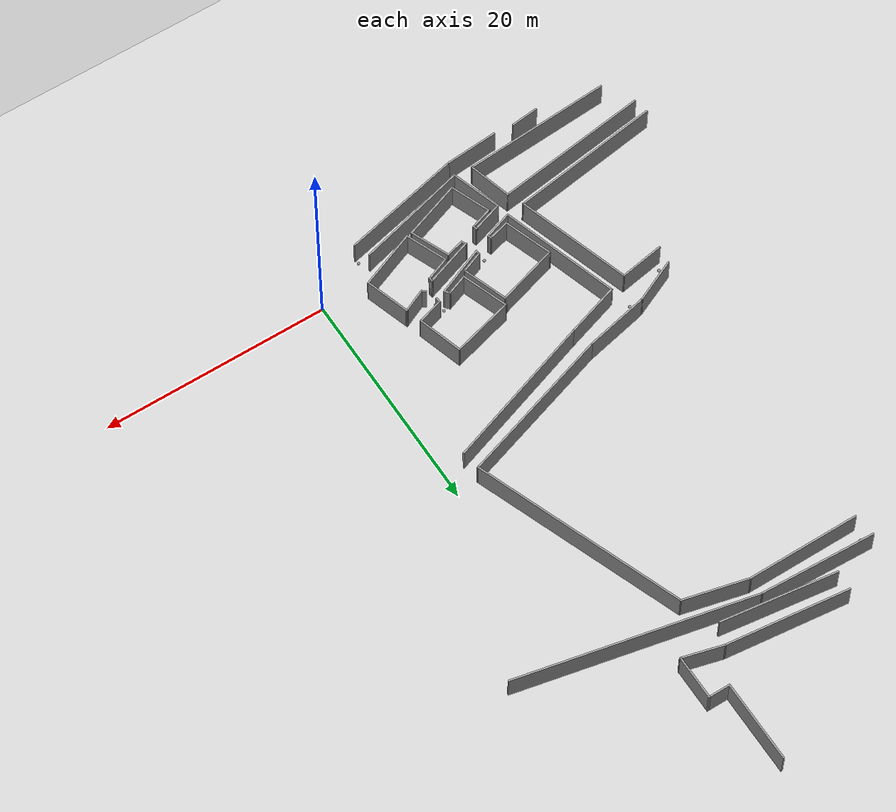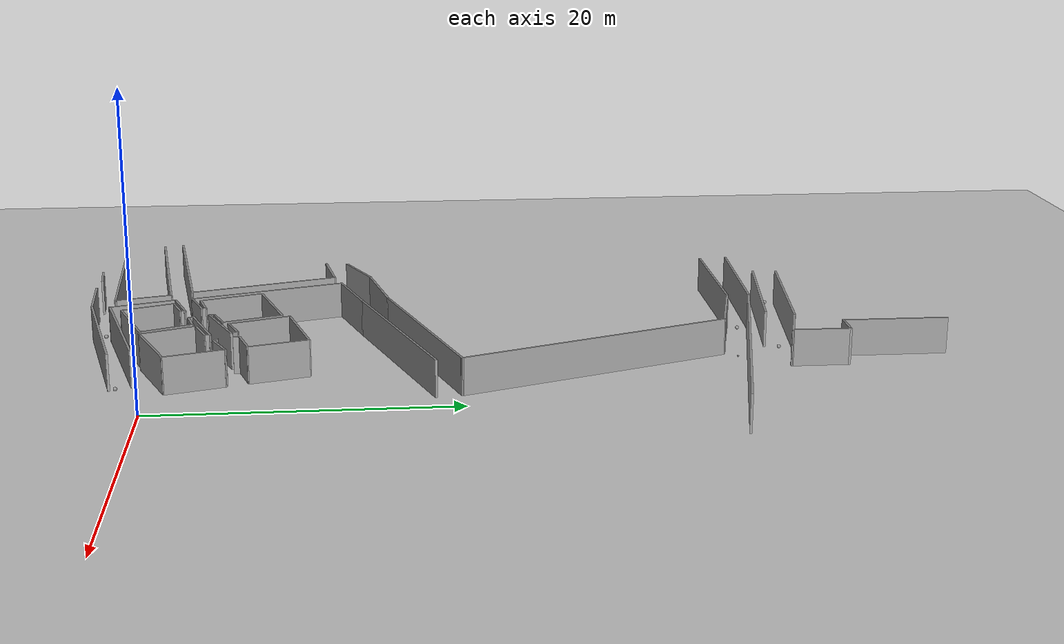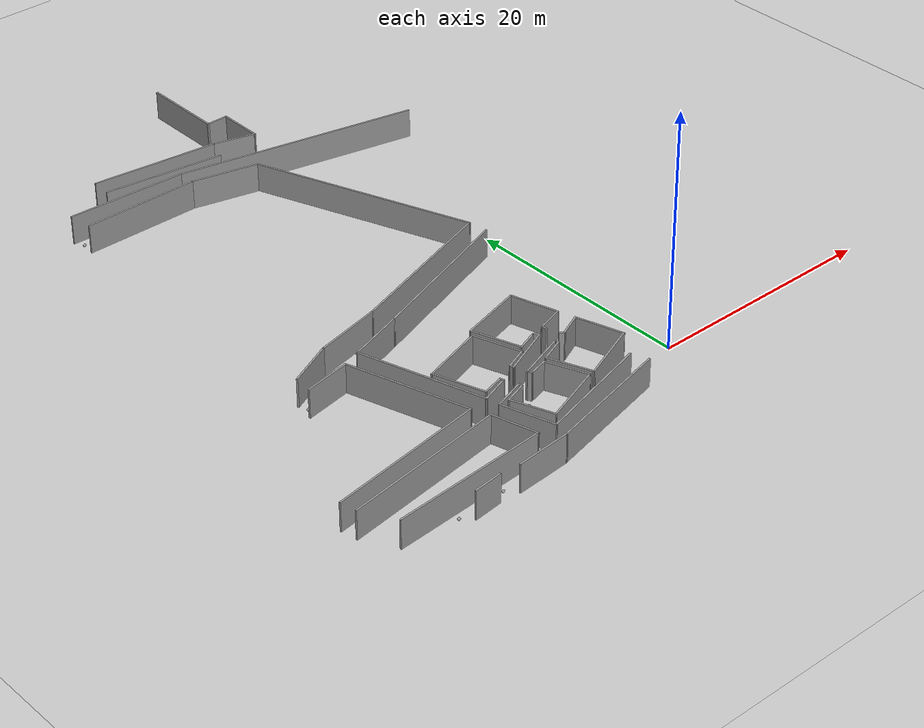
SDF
<sdf version="1.7">
 <world name="default">
  <model name="ground_plane">
   <static>1</static>
   <link name="link">
    <collision name="collision">
     <geometry><plane><normal>0 0 1</normal><size>100 100</size></plane></geometry>
     <surface><friction><ode><mu>100</mu><mu2>50</mu2></ode></friction></surface>
    </collision>
    <visual name="visual">
     <cast_shadows>0</cast_shadows>
     <geometry><plane><normal>0 0 1</normal><size>100 100</size></plane></geometry>
     <material>
      <script><uri>file://media/materials/scripts/gazebo.material</uri><name>Gazebo/Grey</name></script>
     </material>
    </visual>
   </link>
  </model>
  <model name="final_max_v1">
   <pose>-2.5231 0.6891 0 0 -0 0</pose>
   <link name="Wall_107">
    <collision name="Wall_107_Collision">
     <geometry><box><size>10.9191 0.15 2.5</size></box></geometry>
     <pose>0 0 1.25 0 -0 0</pose>
    </collision>
    <visual name="Wall_107_Visual">
     <pose>0 0 1.25 0 -0 0</pose>
     <geometry><box><size>10.9191 0.15 2.5</size></box></geometry>
     <material>
      <script><uri>file://media/materials/scripts/gazebo.material</uri><name>Gazebo/Grey</name></script>
      <ambient>1 1 1 1</ambient>
     </material>
     <meta><layer>0</layer></meta>
    </visual>
    <pose>-12.2939 42.7164 0 0 -0 -0.117872</pose>
   </link>
   <link name="Wall_111">
    <collision name="Wall_111_Collision">
     <geometry><box><size>3.75 0.15 2.5</size></box></geometry>
     <pose>0 0 1.25 0 -0 0</pose>
    </collision>
    <visual name="Wall_111_Visual">
     <pose>0 0 1.25 0 -0 0</pose>
     <geometry><box><size>3.75 0.15 2.5</size></box></geometry>
     <material>
      <script><uri>file://media/materials/scripts/gazebo.material</uri><name>Gazebo/Grey</name></script>
      <ambient>1 1 1 1</ambient>
     </material>
     <meta><layer>0</layer></meta>
    </visual>
    <pose>-5.20804 41.6173 0 0 -0 -0.261799</pose>
   </link>
   <link name="Wall_112">
    <collision name="Wall_112_Collision">
     <geometry><box><size>4 0.15 2.5</size></box></geometry>
     <pose>0 0 1.25 0 -0 0</pose>
    </collision>
    <visual name="Wall_112_Visual">
     <pose>0 0 1.25 0 -0 0</pose>
     <geometry><box><size>4 0.15 2.5</size></box></geometry>
     <material>
      <script><uri>file://media/materials/scripts/gazebo.material</uri><name>Gazebo/Grey</name></script>
      <ambient>1 1 1 1</ambient>
     </material>
     <meta><layer>0</layer></meta>
    </visual>
    <pose>-3.46937 43.0764 0 0 -0 1.5708</pose>
   </link>
   <link name="Wall_113">
    <collision name="Wall_113_Collision">
     <geometry><box><size>2 0.15 2.5</size></box></geometry>
     <pose>0 0 1.25 0 -0 0</pose>
    </collision>
    <visual name="Wall_113_Visual">
     <pose>0 0 1.25 0 -0 0</pose>
     <geometry><box><size>2 0.15 2.5</size></box></geometry>
     <material>
      <script><uri>file://media/materials/scripts/gazebo.material</uri><name>Gazebo/Grey</name></script>
      <ambient>1 1 1 1</ambient>
     </material>
     <meta><layer>0</layer></meta>
    </visual>
    <pose>-4.39437 45.0014 0 0 -0 3.14159</pose>
   </link>
   <link name="Wall_114">
    <collision name="Wall_114_Collision">
     <geometry><box><size>7.25 0.15 2.5</size></box></geometry>
     <pose>0 0 1.25 0 -0 0</pose>
    </collision>
    <visual name="Wall_114_Visual">
     <pose>0 0 1.25 0 -0 0</pose>
     <geometry><box><size>7.25 0.15 2.5</size></box></geometry>
     <material>
      <script><uri>file://media/materials/scripts/gazebo.material</uri><name>Gazebo/Grey</name></script>
      <ambient>1 1 1 1</ambient>
     </material>
     <meta><layer>0</layer></meta>
    </visual>
    <pose>-5.31937 48.5514 0 0 -0 1.5708</pose>
   </link>
   <link name="Wall_157">
    <collision name="Wall_157_Collision">
     <geometry><box><size>10.2725 0.15 2.5</size></box></geometry>
     <pose>0 0 1.25 0 -0 0</pose>
    </collision>
    <visual name="Wall_157_Visual">
     <pose>0 0 1.25 0 -0 0</pose>
     <geometry><box><size>10.2725 0.15 2.5</size></box></geometry>
     <material>
      <script><uri>file://media/materials/scripts/gazebo.material</uri><name>Gazebo/Grey</name></script>
      <ambient>1 1 1 1</ambient>
     </material>
     <meta><layer>0</layer></meta>
    </visual>
    <pose>-12.7202 40.965 0 0 -0 -0.136756</pose>
   </link>
   <link name="Wall_189">
    <collision name="Wall_189_Collision">
     <geometry><box><size>10.2804 0.15 2.5</size></box></geometry>
     <pose>0 0 1.25 0 -0 0</pose>
    </collision>
    <visual name="Wall_189_Visual">
     <pose>0 0 1.25 0 -0 0</pose>
     <geometry><box><size>10.2804 0.15 2.5</size></box></geometry>
     <material>
      <script><uri>file://media/materials/scripts/gazebo.material</uri><name>Gazebo/Grey</name></script>
      <ambient>1 1 1 1</ambient>
     </material>
     <meta><layer>0</layer></meta>
    </visual>
    <pose>-16.8186 40.2457 0 0 -0 -0.045423</pose>
   </link>
   <link name="Wall_191">
    <collision name="Wall_191_Collision">
     <geometry><box><size>20.8467 0.15 2.5</size></box></geometry>
     <pose>0 0 1.25 0 -0 0</pose>
    </collision>
    <visual name="Wall_191_Visual">
     <pose>0 0 1.25 0 -0 0</pose>
     <geometry><box><size>20.8467 0.15 2.5</size></box></geometry>
     <material>
      <script><uri>file://media/materials/scripts/gazebo.material</uri><name>Gazebo/Grey</name></script>
      <ambient>1 1 1 1</ambient>
     </material>
     <meta><layer>0</layer></meta>
    </visual>
    <pose>-1.63858 37.8537 0 0 -0 -0.210472</pose>
   </link>
   <link name="Wall_208">
    <collision name="Wall_208_Collision">
     <geometry><box><size>10 0.15 2.5</size></box></geometry>
     <pose>0 0 1.25 0 -0 0</pose>
    </collision>
    <visual name="Wall_208_Visual">
     <pose>0 0 1.25 0 -0 0</pose>
     <geometry><box><size>10 0.15 2.5</size></box></geometry>
     <material>
      <script><uri>file://media/materials/scripts/gazebo.material</uri><name>Gazebo/Grey</name></script>
      <ambient>1 1 1 1</ambient>
     </material>
     <meta><layer>0</layer></meta>
    </visual>
    <pose>-16.6881 38.4858 0 0 -0 0</pose>
   </link>
   <link name="Wall_326">
    <collision name="Wall_326_Collision">
     <geometry><box><size>2 0.15 2.5</size></box></geometry>
     <pose>0 0 1.25 0 -0 0</pose>
    </collision>
    <visual name="Wall_326_Visual">
     <pose>0 0 1.25 0 -0 0</pose>
     <geometry><box><size>2 0.15 2.5</size></box></geometry>
     <material>
      <script><uri>file://media/materials/scripts/gazebo.material</uri><name>Gazebo/Grey</name></script>
      <ambient>1 1 1 1</ambient>
     </material>
     <meta><layer>0</layer></meta>
    </visual>
    <pose>-12.5221 1.99009 0 0 -0 -2.87979</pose>
   </link>
   <link name="Wall_327">
    <collision name="Wall_327_Collision">
     <geometry><box><size>4.52817 0.15 2.5</size></box></geometry>
     <pose>0 0 1.25 0 -0 0</pose>
    </collision>
    <visual name="Wall_327_Visual">
     <pose>0 0 1.25 0 -0 0</pose>
     <geometry><box><size>4.52817 0.15 2.5</size></box></geometry>
     <material>
      <script><uri>file://media/materials/scripts/gazebo.material</uri><name>Gazebo/Grey</name></script>
      <ambient>1 1 1 1</ambient>
     </material>
     <meta><layer>0</layer></meta>
    </visual>
    <pose>-14.1161 3.82466 0 0 -0 1.89652</pose>
   </link>
   <link name="Wall_328">
    <collision name="Wall_328_Collision">
     <geometry><box><size>5.68673 0.15 2.5</size></box></geometry>
     <pose>0 0 1.25 0 -0 0</pose>
    </collision>
    <visual name="Wall_328_Visual">
     <pose>0 0 1.25 0 -0 0</pose>
     <geometry><box><size>5.68673 0.15 2.5</size></box></geometry>
     <material>
      <script><uri>file://media/materials/scripts/gazebo.material</uri><name>Gazebo/Grey</name></script>
      <ambient>1 1 1 1</ambient>
     </material>
     <meta><layer>0</layer></meta>
    </visual>
    <pose>-12.1699 6.71066 0 0 -0 0.2977</pose>
   </link>
   <link name="Wall_329">
    <collision name="Wall_329_Collision">
     <geometry><box><size>4.22069 0.15 2.5</size></box></geometry>
     <pose>0 0 1.25 0 -0 0</pose>
    </collision>
    <visual name="Wall_329_Visual">
     <pose>0 0 1.25 0 -0 0</pose>
     <geometry><box><size>4.22069 0.15 2.5</size></box></geometry>
     <material>
      <script><uri>file://media/materials/scripts/gazebo.material</uri><name>Gazebo/Grey</name></script>
      <ambient>1 1 1 1</ambient>
     </material>
     <meta><layer>0</layer></meta>
    </visual>
    <pose>-8.8617 5.59789 0 0 -0 -1.2397</pose>
   </link>
   <link name="Wall_330">
    <collision name="Wall_330_Collision">
     <geometry><box><size>2.0935 0.15 2.5</size></box></geometry>
     <pose>0 0 1.25 0 -0 0</pose>
    </collision>
    <visual name="Wall_330_Visual">
     <pose>0 0 1.25 0 -0 0</pose>
     <geometry><box><size>2.0935 0.15 2.5</size></box></geometry>
     <material>
      <script><uri>file://media/materials/scripts/gazebo.material</uri><name>Gazebo/Grey</name></script>
      <ambient>1 1 1 1</ambient>
     </material>
     <meta><layer>0</layer></meta>
    </visual>
    <pose>-9.1023 3.3122 0 0 -0 -2.76109</pose>
   </link>
   <link name="Wall_332">
    <collision name="Wall_332_Collision">
     <geometry><box><size>2.01562 0.15 2.5</size></box></geometry>
     <pose>0 0 1.25 0 -0 0</pose>
    </collision>
    <visual name="Wall_332_Visual">
     <pose>0 0 1.25 0 -0 0</pose>
     <geometry><box><size>2.01562 0.15 2.5</size></box></geometry>
     <material>
      <script><uri>file://media/materials/scripts/gazebo.material</uri><name>Gazebo/Grey</name></script>
      <ambient>1 1 1 1</ambient>
     </material>
     <meta><layer>0</layer></meta>
    </visual>
    <pose>-6.96698 4.42497 0 0 -0 -2.77905</pose>
   </link>
   <link name="Wall_333">
    <collision name="Wall_333_Collision">
     <geometry><box><size>4.35405 0.15 2.5</size></box></geometry>
     <pose>0 0 1.25 0 -0 0</pose>
    </collision>
    <visual name="Wall_333_Visual">
     <pose>0 0 1.25 0 -0 0</pose>
     <geometry><box><size>4.35405 0.15 2.5</size></box></geometry>
     <material>
      <script><uri>file://media/materials/scripts/gazebo.material</uri><name>Gazebo/Grey</name></script>
      <ambient>1 1 1 1</ambient>
     </material>
     <meta><layer>0</layer></meta>
    </visual>
    <pose>-8.53088 6.07909 0 0 -0 1.90612</pose>
   </link>
   <link name="Wall_334">
    <collision name="Wall_334_Collision">
     <geometry><box><size>5.63652 0.15 2.5</size></box></geometry>
     <pose>0 0 1.25 0 -0 0</pose>
    </collision>
    <visual name="Wall_334_Visual">
     <pose>0 0 1.25 0 -0 0</pose>
     <geometry><box><size>5.63652 0.15 2.5</size></box></geometry>
     <material>
      <script><uri>file://media/materials/scripts/gazebo.material</uri><name>Gazebo/Grey</name></script>
      <ambient>1 1 1 1</ambient>
     </material>
     <meta><layer>0</layer></meta>
    </visual>
    <pose>-6.57601 8.78584 0 0 -0 0.266252</pose>
   </link>
   <link name="Wall_335">
    <collision name="Wall_335_Collision">
     <geometry><box><size>4.16566 0.15 2.5</size></box></geometry>
     <pose>0 0 1.25 0 -0 0</pose>
    </collision>
    <visual name="Wall_335_Visual">
     <pose>0 0 1.25 0 -0 0</pose>
     <geometry><box><size>4.16566 0.15 2.5</size></box></geometry>
     <material>
      <script><uri>file://media/materials/scripts/gazebo.material</uri><name>Gazebo/Grey</name></script>
      <ambient>1 1 1 1</ambient>
     </material>
     <meta><layer>0</layer></meta>
    </visual>
    <pose>-3.35798 7.58284 0 0 -0 -1.28221</pose>
   </link>
   <link name="Wall_336">
    <collision name="Wall_336_Collision">
     <geometry><box><size>2.41423 0.15 2.5</size></box></geometry>
     <pose>0 0 1.25 0 -0 0</pose>
    </collision>
    <visual name="Wall_336_Visual">
     <pose>0 0 1.25 0 -0 0</pose>
     <geometry><box><size>2.41423 0.15 2.5</size></box></geometry>
     <material>
      <script><uri>file://media/materials/scripts/gazebo.material</uri><name>Gazebo/Grey</name></script>
      <ambient>1 1 1 1</ambient>
     </material>
     <meta><layer>0</layer></meta>
    </visual>
    <pose>-3.86926 5.32722 0 0 -0 -2.84505</pose>
   </link>
   <link name="Wall_338">
    <collision name="Wall_338_Collision">
     <geometry><box><size>3.79257 0.15 2.5</size></box></geometry>
     <pose>0 0 1.25 0 -0 0</pose>
    </collision>
    <visual name="Wall_338_Visual">
     <pose>0 0 1.25 0 -0 0</pose>
     <geometry><box><size>3.79257 0.15 2.5</size></box></geometry>
     <material>
      <script><uri>file://media/materials/scripts/gazebo.material</uri><name>Gazebo/Grey</name></script>
      <ambient>1 1 1 1</ambient>
     </material>
     <meta><layer>0</layer></meta>
    </visual>
    <pose>-12.1998 -1.73062 0 0 -0 -1.20362</pose>
   </link>
   <link name="Wall_339">
    <collision name="Wall_339_Collision">
     <geometry><box><size>5.49451 0.15 2.5</size></box></geometry>
     <pose>0 0 1.25 0 -0 0</pose>
    </collision>
    <visual name="Wall_339_Visual">
     <pose>0 0 1.25 0 -0 0</pose>
     <geometry><box><size>5.49451 0.15 2.5</size></box></geometry>
     <material>
      <script><uri>file://media/materials/scripts/gazebo.material</uri><name>Gazebo/Grey</name></script>
      <ambient>1 1 1 1</ambient>
     </material>
     <meta><layer>0</layer></meta>
    </visual>
    <pose>-9.03535 -2.51518 0 0 -0 0.349607</pose>
   </link>
   <link name="Wall_340">
    <collision name="Wall_340_Collision">
     <geometry><box><size>3.71476 0.15 2.5</size></box></geometry>
     <pose>0 0 1.25 0 -0 0</pose>
    </collision>
    <visual name="Wall_340_Visual">
     <pose>0 0 1.25 0 -0 0</pose>
     <geometry><box><size>3.71476 0.15 2.5</size></box></geometry>
     <material>
      <script><uri>file://media/materials/scripts/gazebo.material</uri><name>Gazebo/Grey</name></script>
      <ambient>1 1 1 1</ambient>
     </material>
     <meta><layer>0</layer></meta>
    </visual>
    <pose>-7.2047 0.047724 0 0 -0 1.9622</pose>
   </link>
   <link name="Wall_343">
    <collision name="Wall_343_Collision">
     <geometry><box><size>3.92824 0.15 2.5</size></box></geometry>
     <pose>0 0 1.25 0 -0 0</pose>
    </collision>
    <visual name="Wall_343_Visual">
     <pose>0 0 1.25 0 -0 0</pose>
     <geometry><box><size>3.92824 0.15 2.5</size></box></geometry>
     <material>
      <script><uri>file://media/materials/scripts/gazebo.material</uri><name>Gazebo/Grey</name></script>
      <ambient>1 1 1 1</ambient>
     </material>
     <meta><layer>0</layer></meta>
    </visual>
    <pose>-6.76011 0.204637 0 0 -0 -1.18772</pose>
   </link>
   <link name="Wall_344">
    <collision name="Wall_344_Collision">
     <geometry><box><size>5.45315 0.15 2.5</size></box></geometry>
     <pose>0 0 1.25 0 -0 0</pose>
    </collision>
    <visual name="Wall_344_Visual">
     <pose>0 0 1.25 0 -0 0</pose>
     <geometry><box><size>5.45315 0.15 2.5</size></box></geometry>
     <material>
      <script><uri>file://media/materials/scripts/gazebo.material</uri><name>Gazebo/Grey</name></script>
      <ambient>1 1 1 1</ambient>
     </material>
     <meta><layer>0</layer></meta>
    </visual>
    <pose>-3.5957 -0.553775 0 0 -0 0.384169</pose>
   </link>
   <link name="Wall_345">
    <collision name="Wall_345_Collision">
     <geometry><box><size>4.15324 0.15 2.5</size></box></geometry>
     <pose>0 0 1.25 0 -0 0</pose>
    </collision>
    <visual name="Wall_345_Visual">
     <pose>0 0 1.25 0 -0 0</pose>
     <geometry><box><size>4.15324 0.15 2.5</size></box></geometry>
     <material>
      <script><uri>file://media/materials/scripts/gazebo.material</uri><name>Gazebo/Grey</name></script>
      <ambient>1 1 1 1</ambient>
     </material>
     <meta><layer>0</layer></meta>
    </visual>
    <pose>-1.7389 2.34911 0 0 -0 1.87602</pose>
   </link>
   <link name="Wall_348">
    <collision name="Wall_348_Collision">
     <geometry><box><size>2.08526 0.15 2.5</size></box></geometry>
     <pose>0 0 1.25 0 -0 0</pose>
    </collision>
    <visual name="Wall_348_Visual">
     <pose>0 0 1.25 0 -0 0</pose>
     <geometry><box><size>2.08526 0.15 2.5</size></box></geometry>
     <material>
      <script><uri>file://media/materials/scripts/gazebo.material</uri><name>Gazebo/Grey</name></script>
      <ambient>1 1 1 1</ambient>
     </material>
     <meta><layer>0</layer></meta>
    </visual>
    <pose>-11.9382 0.283094 0 0 -0 0.330297</pose>
   </link>
   <link name="Wall_350">
    <collision name="Wall_350_Collision">
     <geometry><box><size>1.75 0.15 2.5</size></box></geometry>
     <pose>0 0 1.25 0 -0 0</pose>
    </collision>
    <visual name="Wall_350_Visual">
     <pose>0 0 1.25 0 -0 0</pose>
     <geometry><box><size>1.75 0.15 2.5</size></box></geometry>
     <material>
      <script><uri>file://media/materials/scripts/gazebo.material</uri><name>Gazebo/Grey</name></script>
      <ambient>1 1 1 1</ambient>
     </material>
     <meta><layer>0</layer></meta>
    </visual>
    <pose>-8.6574 1.48825 0 0 -0 -2.87979</pose>
   </link>
   <link name="Wall_352">
    <collision name="Wall_352_Collision">
     <geometry><box><size>2.28681 0.15 2.5</size></box></geometry>
     <pose>0 0 1.25 0 -0 0</pose>
    </collision>
    <visual name="Wall_352_Visual">
     <pose>0 0 1.25 0 -0 0</pose>
     <geometry><box><size>2.28681 0.15 2.5</size></box></geometry>
     <material>
      <script><uri>file://media/materials/scripts/gazebo.material</uri><name>Gazebo/Grey</name></script>
      <ambient>1 1 1 1</ambient>
     </material>
     <meta><layer>0</layer></meta>
    </visual>
    <pose>-6.47244 2.34911 0 0 -0 0.375961</pose>
   </link>
   <link name="Wall_354">
    <collision name="Wall_354_Collision">
     <geometry><box><size>2.27975 0.15 2.5</size></box></geometry>
     <pose>0 0 1.25 0 -0 0</pose>
    </collision>
    <visual name="Wall_354_Visual">
     <pose>0 0 1.25 0 -0 0</pose>
     <geometry><box><size>2.27975 0.15 2.5</size></box></geometry>
     <material>
      <script><uri>file://media/materials/scripts/gazebo.material</uri><name>Gazebo/Grey</name></script>
      <ambient>1 1 1 1</ambient>
     </material>
     <meta><layer>0</layer></meta>
    </visual>
    <pose>-3.30803 3.81363 0 0 -0 -2.7109</pose>
   </link>
   <link name="Wall_356">
    <collision name="Wall_356_Collision">
     <geometry><box><size>0.444601 0.15 2.5</size></box></geometry>
     <pose>0 0 1.25 0 -0 0</pose>
    </collision>
    <visual name="Wall_356_Visual">
     <pose>0 0 1.25 0 -0 0</pose>
     <geometry><box><size>0.444601 0.15 2.5</size></box></geometry>
     <material>
      <script><uri>file://media/materials/scripts/gazebo.material</uri><name>Gazebo/Grey</name></script>
      <ambient>1 1 1 1</ambient>
     </material>
     <meta><layer>0</layer></meta>
    </visual>
    <pose>-11.0589 0.739759 0 0 -0 -1.32406</pose>
   </link>
   <link name="Wall_358">
    <collision name="Wall_358_Collision">
     <geometry><box><size>0.523214 0.15 2.5</size></box></geometry>
     <pose>0 0 1.25 0 -0 0</pose>
    </collision>
    <visual name="Wall_358_Visual">
     <pose>0 0 1.25 0 -0 0</pose>
     <geometry><box><size>0.523214 0.15 2.5</size></box></geometry>
     <material>
      <script><uri>file://media/materials/scripts/gazebo.material</uri><name>Gazebo/Grey</name></script>
      <ambient>1 1 1 1</ambient>
     </material>
     <meta><layer>0</layer></meta>
    </visual>
    <pose>-9.5231 1.443 0 0 -0 -1.04932</pose>
   </link>
   <link name="Wall_360">
    <collision name="Wall_360_Collision">
     <geometry><box><size>0.411181 0.15 2.5</size></box></geometry>
     <pose>0 0 1.25 0 -0 0</pose>
    </collision>
    <visual name="Wall_360_Visual">
     <pose>0 0 1.25 0 -0 0</pose>
     <geometry><box><size>0.411181 0.15 2.5</size></box></geometry>
     <material>
      <script><uri>file://media/materials/scripts/gazebo.material</uri><name>Gazebo/Grey</name></script>
      <ambient>1 1 1 1</ambient>
     </material>
     <meta><layer>0</layer></meta>
    </visual>
    <pose>-11.5853 2.1063 0 0 -0 1.90897</pose>
   </link>
   <link name="Wall_362">
    <collision name="Wall_362_Collision">
     <geometry><box><size>0.467902 0.15 2.5</size></box></geometry>
     <pose>0 0 1.25 0 -0 0</pose>
    </collision>
    <visual name="Wall_362_Visual">
     <pose>0 0 1.25 0 -0 0</pose>
     <geometry><box><size>0.467902 0.15 2.5</size></box></geometry>
     <material>
      <script><uri>file://media/materials/scripts/gazebo.material</uri><name>Gazebo/Grey</name></script>
      <ambient>1 1 1 1</ambient>
     </material>
     <meta><layer>0</layer></meta>
    </visual>
    <pose>-9.98226 2.79392 0 0 -0 1.71151</pose>
   </link>
   <link name="Wall_364">
    <collision name="Wall_364_Collision">
     <geometry><box><size>0.497007 0.15 2.5</size></box></geometry>
     <pose>0 0 1.25 0 -0 0</pose>
    </collision>
    <visual name="Wall_364_Visual">
     <pose>0 0 1.25 0 -0 0</pose>
     <geometry><box><size>0.497007 0.15 2.5</size></box></geometry>
     <material>
      <script><uri>file://media/materials/scripts/gazebo.material</uri><name>Gazebo/Grey</name></script>
      <ambient>1 1 1 1</ambient>
     </material>
     <meta><layer>0</layer></meta>
    </visual>
    <pose>-5.98113 4.62472 0 0 -0 2.28524</pose>
   </link>
   <link name="Wall_366">
    <collision name="Wall_366_Collision">
     <geometry><box><size>0.515419 0.15 2.5</size></box></geometry>
     <pose>0 0 1.25 0 -0 0</pose>
    </collision>
    <visual name="Wall_366_Visual">
     <pose>0 0 1.25 0 -0 0</pose>
     <geometry><box><size>0.515419 0.15 2.5</size></box></geometry>
     <material>
      <script><uri>file://media/materials/scripts/gazebo.material</uri><name>Gazebo/Grey</name></script>
      <ambient>1 1 1 1</ambient>
     </material>
     <meta><layer>0</layer></meta>
    </visual>
    <pose>-4.94543 4.8138 0 0 -0 1.60655</pose>
   </link>
   <link name="Wall_368">
    <collision name="Wall_368_Collision">
     <geometry><box><size>0.458009 0.15 2.5</size></box></geometry>
     <pose>0 0 1.25 0 -0 0</pose>
    </collision>
    <visual name="Wall_368_Visual">
     <pose>0 0 1.25 0 -0 0</pose>
     <geometry><box><size>0.458009 0.15 2.5</size></box></geometry>
     <material>
      <script><uri>file://media/materials/scripts/gazebo.material</uri><name>Gazebo/Grey</name></script>
      <ambient>1 1 1 1</ambient>
     </material>
     <meta><layer>0</layer></meta>
    </visual>
    <pose>-5.4839 2.89531 0 0 -0 -1.53674</pose>
   </link>
   <link name="Wall_370">
    <collision name="Wall_370_Collision">
     <geometry><box><size>0.49586 0.15 2.5</size></box></geometry>
     <pose>0 0 1.25 0 -0 0</pose>
    </collision>
    <visual name="Wall_370_Visual">
     <pose>0 0 1.25 0 -0 0</pose>
     <geometry><box><size>0.49586 0.15 2.5</size></box></geometry>
     <material>
      <script><uri>file://media/materials/scripts/gazebo.material</uri><name>Gazebo/Grey</name></script>
      <ambient>1 1 1 1</ambient>
     </material>
     <meta><layer>0</layer></meta>
    </visual>
    <pose>-4.41813 3.46707 0 0 -0 -0.602649</pose>
   </link>
   <link name="Wall_381">
    <collision name="Wall_381_Collision">
     <geometry><box><size>14.3834 0.15 2.5</size></box></geometry>
     <pose>0 0 1.25 0 -0 0</pose>
    </collision>
    <visual name="Wall_381_Visual">
     <pose>0 0 1.25 0 -0 0</pose>
     <geometry><box><size>14.3834 0.15 2.5</size></box></geometry>
     <material>
      <script><uri>file://media/materials/scripts/gazebo.material</uri><name>Gazebo/Grey</name></script>
      <ambient>1 1 1 1</ambient>
     </material>
     <meta><layer>0</layer></meta>
    </visual>
    <pose>-6.23233 16.9329 0 0 -0 0.313621</pose>
   </link>
   <link name="Wall_383">
    <collision name="Wall_383_Collision">
     <geometry><box><size>19.4012 0.15 2.5</size></box></geometry>
     <pose>0 0 1.25 0 -0 0</pose>
    </collision>
    <visual name="Wall_383_Visual">
     <pose>0 0 1.25 0 -0 0</pose>
     <geometry><box><size>19.4012 0.15 2.5</size></box></geometry>
     <material>
      <script><uri>file://media/materials/scripts/gazebo.material</uri><name>Gazebo/Grey</name></script>
      <ambient>1 1 1 1</ambient>
     </material>
     <meta><layer>0</layer></meta>
    </visual>
    <pose>-2.84755 28.1393 0 0 -0 -1.21147</pose>
   </link>
   <link name="Wall_385">
    <collision name="Wall_385_Collision">
     <geometry><box><size>5.83984 0.15 2.5</size></box></geometry>
     <pose>0 0 1.25 0 -0 0</pose>
    </collision>
    <visual name="Wall_385_Visual">
     <pose>0 0 1.25 0 -0 0</pose>
     <geometry><box><size>5.83984 0.15 2.5</size></box></geometry>
     <material>
      <script><uri>file://media/materials/scripts/gazebo.material</uri><name>Gazebo/Grey</name></script>
      <ambient>1 1 1 1</ambient>
     </material>
     <meta><layer>0</layer></meta>
    </visual>
    <pose>-8.99774 37.818 0 0 -0 -0.236973</pose>
   </link>
   <link name="Wall_400">
    <collision name="Wall_400_Collision">
     <geometry><box><size>4.23042 0.15 2.5</size></box></geometry>
     <pose>0 0 1.25 0 -0 0</pose>
    </collision>
    <visual name="Wall_400_Visual">
     <pose>0 0 1.25 0 -0 0</pose>
     <geometry><box><size>4.23042 0.15 2.5</size></box></geometry>
     <material>
      <script><uri>file://media/materials/scripts/gazebo.material</uri><name>Gazebo/Grey</name></script>
      <ambient>1 1 1 1</ambient>
     </material>
     <meta><layer>0</layer></meta>
    </visual>
    <pose>-20.4212 12.6703 0 0 -0 0.428018</pose>
   </link>
   <link name="Wall_401">
    <collision name="Wall_401_Collision">
     <geometry><box><size>5.84537 0.15 2.5</size></box></geometry>
     <pose>0 0 1.25 0 -0 0</pose>
    </collision>
    <visual name="Wall_401_Visual">
     <pose>0 0 1.25 0 -0 0</pose>
     <geometry><box><size>5.84537 0.15 2.5</size></box></geometry>
     <material>
      <script><uri>file://media/materials/scripts/gazebo.material</uri><name>Gazebo/Grey</name></script>
      <ambient>1 1 1 1</ambient>
     </material>
     <meta><layer>0</layer></meta>
    </visual>
    <pose>-15.7834 14.1273 0 0 -0 0.215921</pose>
   </link>
   <link name="Wall_404">
    <collision name="Wall_404_Collision">
     <geometry><box><size>4 0.15 2.5</size></box></geometry>
     <pose>0 0 1.25 0 -0 0</pose>
    </collision>
    <visual name="Wall_404_Visual">
     <pose>0 0 1.25 0 -0 0</pose>
     <geometry><box><size>4 0.15 2.5</size></box></geometry>
     <material>
      <script><uri>file://media/materials/scripts/gazebo.material</uri><name>Gazebo/Grey</name></script>
      <ambient>1 1 1 1</ambient>
     </material>
     <meta><layer>0</layer></meta>
    </visual>
    <pose>-14.4631 -2.31451 0 0 -0 1.8326</pose>
   </link>
   <link name="Wall_407">
    <collision name="Wall_407_Collision">
     <geometry><box><size>13.2674 0.15 2.5</size></box></geometry>
     <pose>0 0 1.25 0 -0 0</pose>
    </collision>
    <visual name="Wall_407_Visual">
     <pose>0 0 1.25 0 -0 0</pose>
     <geometry><box><size>13.2674 0.15 2.5</size></box></geometry>
     <material>
      <script><uri>file://media/materials/scripts/gazebo.material</uri><name>Gazebo/Grey</name></script>
      <ambient>1 1 1 1</ambient>
     </material>
     <meta><layer>0</layer></meta>
    </visual>
    <pose>-20.5089 -4.61181 0 0 -0 0.066815</pose>
   </link>
   <link name="Wall_409">
    <collision name="Wall_409_Collision">
     <geometry><box><size>13.9247 0.15 2.5</size></box></geometry>
     <pose>0 0 1.25 0 -0 0</pose>
    </collision>
    <visual name="Wall_409_Visual">
     <pose>0 0 1.25 0 -0 0</pose>
     <geometry><box><size>13.9247 0.15 2.5</size></box></geometry>
     <material>
      <script><uri>file://media/materials/scripts/gazebo.material</uri><name>Gazebo/Grey</name></script>
      <ambient>1 1 1 1</ambient>
     </material>
     <meta><layer>0</layer></meta>
    </visual>
    <pose>-21.7821 -1.41006 0 0 -0 0.139103</pose>
   </link>
   <link name="Wall_433">
    <collision name="Wall_433_Collision">
     <geometry><box><size>13.5881 0.15 2.5</size></box></geometry>
     <pose>0 0 1.25 0 -0 0</pose>
    </collision>
    <visual name="Wall_433_Visual">
     <pose>0 0 1.25 0 -0 0</pose>
     <geometry><box><size>13.5881 0.15 2.5</size></box></geometry>
     <material>
      <script><uri>file://media/materials/scripts/gazebo.material</uri><name>Gazebo/Grey</name></script>
      <ambient>1 1 1 1</ambient>
     </material>
     <meta><layer>0</layer></meta>
    </visual>
    <pose>-22.2034 -0.021479 0 0 -0 0.146646</pose>
   </link>
   <link name="Wall_435">
    <collision name="Wall_435_Collision">
     <geometry><box><size>10.5808 0.15 2.5</size></box></geometry>
     <pose>0 0 1.25 0 -0 0</pose>
    </collision>
    <visual name="Wall_435_Visual">
     <pose>0 0 1.25 0 -0 0</pose>
     <geometry><box><size>10.5808 0.15 2.5</size></box></geometry>
     <material>
      <script><uri>file://media/materials/scripts/gazebo.material</uri><name>Gazebo/Grey</name></script>
      <ambient>1 1 1 1</ambient>
     </material>
     <meta><layer>0</layer></meta>
    </visual>
    <pose>-17.088 5.94576 0 0 -0 -1.27273</pose>
   </link>
   <link name="Wall_437">
    <collision name="Wall_437_Collision">
     <geometry><box><size>4.04743 0.15 2.5</size></box></geometry>
     <pose>0 0 1.25 0 -0 0</pose>
    </collision>
    <visual name="Wall_437_Visual">
     <pose>0 0 1.25 0 -0 0</pose>
     <geometry><box><size>4.04743 0.15 2.5</size></box></geometry>
     <material>
      <script><uri>file://media/materials/scripts/gazebo.material</uri><name>Gazebo/Grey</name></script>
      <ambient>1 1 1 1</ambient>
     </material>
     <meta><layer>0</layer></meta>
    </visual>
    <pose>-20.54 10.5998 0 0 -0 0.170915</pose>
   </link>
   <link name="Wall_439">
    <collision name="Wall_439_Collision">
     <geometry><box><size>10.9365 0.15 2.5</size></box></geometry>
     <pose>0 0 1.25 0 -0 0</pose>
    </collision>
    <visual name="Wall_439_Visual">
     <pose>0 0 1.25 0 -0 0</pose>
     <geometry><box><size>10.9365 0.15 2.5</size></box></geometry>
     <material>
      <script><uri>file://media/materials/scripts/gazebo.material</uri><name>Gazebo/Grey</name></script>
      <ambient>1 1 1 1</ambient>
     </material>
     <meta><layer>0</layer></meta>
    </visual>
    <pose>-15.4987 6.28843 0 0 -0 1.86683</pose>
   </link>
   <link name="Wall_440">
    <collision name="Wall_440_Collision">
     <geometry><box><size>5.05496 0.15 2.5</size></box></geometry>
     <pose>0 0 1.25 0 -0 0</pose>
    </collision>
    <visual name="Wall_440_Visual">
     <pose>0 0 1.25 0 -0 0</pose>
     <geometry><box><size>5.05496 0.15 2.5</size></box></geometry>
     <material>
      <script><uri>file://media/materials/scripts/gazebo.material</uri><name>Gazebo/Grey</name></script>
      <ambient>1 1 1 1</ambient>
     </material>
     <meta><layer>0</layer></meta>
    </visual>
    <pose>-14.7399 12.2058 0 0 -0 0.314541</pose>
   </link>
   <link name="Wall_442">
    <collision name="Wall_442_Collision">
     <geometry><box><size>2.6815 0.15 2.5</size></box></geometry>
     <pose>0 0 1.25 0 -0 0</pose>
    </collision>
    <visual name="Wall_442_Visual">
     <pose>0 0 1.25 0 -0 0</pose>
     <geometry><box><size>2.6815 0.15 2.5</size></box></geometry>
     <material>
      <script><uri>file://media/materials/scripts/gazebo.material</uri><name>Gazebo/Grey</name></script>
      <ambient>1 1 1 1</ambient>
     </material>
     <meta><layer>0</layer></meta>
    </visual>
    <pose>-12.7336 1.55645 0 0 -0 0.34381</pose>
   </link>
   <link name="Wall_444">
    <collision name="Wall_444_Collision">
     <geometry><box><size>4.68733 0.15 2.5</size></box></geometry>
     <pose>0 0 1.25 0 -0 0</pose>
    </collision>
    <visual name="Wall_444_Visual">
     <pose>0 0 1.25 0 -0 0</pose>
     <geometry><box><size>4.68733 0.15 2.5</size></box></geometry>
     <material>
      <script><uri>file://media/materials/scripts/gazebo.material</uri><name>Gazebo/Grey</name></script>
      <ambient>1 1 1 1</ambient>
     </material>
     <meta><layer>0</layer></meta>
    </visual>
    <pose>-13.0325 -2.16165 0 0 -0 -1.26791</pose>
   </link>
   <link name="Wall_446">
    <collision name="Wall_446_Collision">
     <geometry><box><size>2.90807 0.15 2.5</size></box></geometry>
     <pose>0 0 1.25 0 -0 0</pose>
    </collision>
    <visual name="Wall_446_Visual">
     <pose>0 0 1.25 0 -0 0</pose>
     <geometry><box><size>2.90807 0.15 2.5</size></box></geometry>
     <material>
      <script><uri>file://media/materials/scripts/gazebo.material</uri><name>Gazebo/Grey</name></script>
      <ambient>1 1 1 1</ambient>
     </material>
     <meta><layer>0</layer></meta>
    </visual>
    <pose>-12.402 0.443172 0 0 -0 0.324301</pose>
   </link>
   <link name="Wall_448">
    <collision name="Wall_448_Collision">
     <geometry><box><size>4.52238 0.15 2.5</size></box></geometry>
     <pose>0 0 1.25 0 -0 0</pose>
    </collision>
    <visual name="Wall_448_Visual">
     <pose>0 0 1.25 0 -0 0</pose>
     <geometry><box><size>4.52238 0.15 2.5</size></box></geometry>
     <material>
      <script><uri>file://media/materials/scripts/gazebo.material</uri><name>Gazebo/Grey</name></script>
      <ambient>1 1 1 1</ambient>
     </material>
     <meta><layer>0</layer></meta>
    </visual>
    <pose>-7.5526 2.32702 0 0 -0 0.336675</pose>
   </link>
   <link name="Wall_450">
    <collision name="Wall_450_Collision">
     <geometry><box><size>4.64704 0.15 2.5</size></box></geometry>
     <pose>0 0 1.25 0 -0 0</pose>
    </collision>
    <visual name="Wall_450_Visual">
     <pose>0 0 1.25 0 -0 0</pose>
     <geometry><box><size>4.64704 0.15 2.5</size></box></geometry>
     <material>
      <script><uri>file://media/materials/scripts/gazebo.material</uri><name>Gazebo/Grey</name></script>
      <ambient>1 1 1 1</ambient>
     </material>
     <meta><layer>0</layer></meta>
    </visual>
    <pose>-7.88723 3.50809 0 0 -0 0.398042</pose>
   </link>
   <link name="Wall_452">
    <collision name="Wall_452_Collision">
     <geometry><box><size>10.25 0.15 2.5</size></box></geometry>
     <pose>0 0 1.25 0 -0 0</pose>
    </collision>
    <visual name="Wall_452_Visual">
     <pose>0 0 1.25 0 -0 0</pose>
     <geometry><box><size>10.25 0.15 2.5</size></box></geometry>
     <material>
      <script><uri>file://media/materials/scripts/gazebo.material</uri><name>Gazebo/Grey</name></script>
      <ambient>1 1 1 1</ambient>
     </material>
     <meta><layer>0</layer></meta>
    </visual>
    <pose>-7.47787 -3.02001 0 0 -0 0.261799</pose>
   </link>
   <link name="Wall_599">
    <collision name="Wall_599_Collision">
     <geometry><box><size>2.52036 0.15 2.5</size></box></geometry>
     <pose>0 0 1.25 0 -0 0</pose>
    </collision>
    <visual name="Wall_599_Visual">
     <pose>0 0 1.25 0 -0 0</pose>
     <geometry><box><size>2.52036 0.15 2.5</size></box></geometry>
     <material>
      <script><uri>file://media/materials/scripts/gazebo.material</uri><name>Gazebo/Grey</name></script>
      <ambient>1 1 1 1</ambient>
     </material>
     <meta><layer>0</layer></meta>
    </visual>
    <pose>-20.1715 -5.93225 0 0 -0 -3.0278</pose>
   </link>
   <link name="Wall_604">
    <collision name="Wall_604_Collision">
     <geometry><box><size>4.75114 0.15 2.5</size></box></geometry>
     <pose>0 0 1.25 0 -0 0</pose>
    </collision>
    <visual name="Wall_604_Visual">
     <pose>0 0 1.25 0 -0 0</pose>
     <geometry><box><size>4.75114 0.15 2.5</size></box></geometry>
     <material>
      <script><uri>file://media/materials/scripts/gazebo.material</uri><name>Gazebo/Grey</name></script>
      <ambient>1 1 1 1</ambient>
     </material>
     <meta><layer>0</layer></meta>
    </visual>
    <pose>-14.8837 -5.75218 0 0 -0 0.078353</pose>
   </link>
   <link name="Wall_606">
    <collision name="Wall_606_Collision">
     <geometry><box><size>10.961 0.15 2.5</size></box></geometry>
     <pose>0 0 1.25 0 -0 0</pose>
    </collision>
    <visual name="Wall_606_Visual">
     <pose>0 0 1.25 0 -0 0</pose>
     <geometry><box><size>10.961 0.15 2.5</size></box></geometry>
     <material>
      <script><uri>file://media/materials/scripts/gazebo.material</uri><name>Gazebo/Grey</name></script>
      <ambient>1 1 1 1</ambient>
     </material>
     <meta><layer>0</layer></meta>
    </visual>
    <pose>-7.32839 -4.33404 0 0 -0 0.231091</pose>
   </link>
   <link name="Wall_610">
    <collision name="Wall_610_Collision">
     <geometry><box><size>14.0742 0.15 2.5</size></box></geometry>
     <pose>0 0 1.25 0 -0 0</pose>
    </collision>
    <visual name="Wall_610_Visual">
     <pose>0 0 1.25 0 -0 0</pose>
     <geometry><box><size>14.0742 0.15 2.5</size></box></geometry>
     <material>
      <script><uri>file://media/materials/scripts/gazebo.material</uri><name>Gazebo/Grey</name></script>
      <ambient>1 1 1 1</ambient>
     </material>
     <meta><layer>0</layer></meta>
    </visual>
    <pose>-5.81988 15.2164 0 0 -0 0.32937</pose>
   </link>
   <static>1</static>
  </model>
  <model name="id_1">
   <pose>-8.09262 38.6942 0.059356 0 -0 0</pose>
   <link name="link">
    <inertial>
     <mass>1</mass>
     <inertia><ixx>0.1</ixx><ixy>0</ixy><ixz>0</ixz><iyy>0.1</iyy><iyz>0</iyz><izz>0.1</izz></inertia>
    </inertial>
    <collision name="collision"><geometry><sphere><radius>0.0593561</radius></sphere></geometry></collision>
    <visual name="visual">
     <geometry><sphere><radius>0.0593561</radius></sphere></geometry>
     <material>
      <script><name>Gazebo/Grey</name><uri>file://media/materials/scripts/gazebo.material</uri></script>
     </material>
    </visual>
   </link>
  </model>
  <model name="id_9">
   <pose>-9.70758 41.8568 0.128457 0 -0 0</pose>
   <link name="link">
    <inertial>
     <mass>1</mass>
     <inertia><ixx>0.1</ixx><ixy>0</ixy><ixz>0</ixz><iyy>0.1</iyy><iyz>0</iyz><izz>0.1</izz></inertia>
    </inertial>
    <collision name="collision"><geometry><sphere><radius>0.128457</radius></sphere></geometry></collision>
    <visual name="visual">
     <geometry><sphere><radius>0.128457</radius></sphere></geometry>
     <material>
      <script><name>Gazebo/Grey</name><uri>file://media/materials/scripts/gazebo.material</uri></script>
     </material>
    </visual>
   </link>
  </model>
  <model name="id_10">
   <pose>-20.1703 43.3345 0.128457 0 -0 0</pose>
   <link name="link">
    <inertial>
     <mass>1</mass>
     <inertia><ixx>0.1</ixx><ixy>0</ixy><ixz>0</ixz><iyy>0.1</iyy><iyz>0</iyz><izz>0.1</izz></inertia>
    </inertial>
    <collision name="collision"><geometry><sphere><radius>0.128457</radius></sphere></geometry></collision>
    <visual name="visual">
     <geometry><sphere><radius>0.128457</radius></sphere></geometry>
     <material>
      <script><name>Gazebo/Grey</name><uri>file://media/materials/scripts/gazebo.material</uri></script>
     </material>
    </visual>
   </link>
  </model>
  <model name="id_13">
   <pose>-24.0958 40.2354 0.128457 0 -0 0</pose>
   <link name="link">
    <inertial>
     <mass>1</mass>
     <inertia><ixx>0.1</ixx><ixy>0</ixy><ixz>0</ixz><iyy>0.1</iyy><iyz>0</iyz><izz>0.1</izz></inertia>
    </inertial>
    <collision name="collision"><geometry><sphere><radius>0.128457</radius></sphere></geometry></collision>
    <visual name="visual">
     <geometry><sphere><radius>0.128457</radius></sphere></geometry>
     <material>
      <script><name>Gazebo/Grey</name><uri>file://media/materials/scripts/gazebo.material</uri></script>
     </material>
    </visual>
   </link>
  </model>
  <model name="id_14">
   <pose>-14.1627 39.9392 0.128457 0 -0 0</pose>
   <link name="link">
    <inertial>
     <mass>1</mass>
     <inertia><ixx>0.1</ixx><ixy>0</ixy><ixz>0</ixz><iyy>0.1</iyy><iyz>0</iyz><izz>0.1</izz></inertia>
    </inertial>
    <collision name="collision"><geometry><sphere><radius>0.128457</radius></sphere></geometry></collision>
    <visual name="visual">
     <geometry><sphere><radius>0.128457</radius></sphere></geometry>
     <material>
      <script><name>Gazebo/Grey</name><uri>file://media/materials/scripts/gazebo.material</uri></script>
     </material>
    </visual>
   </link>
  </model>
  <model name="id_46">
   <pose>-20.5905 -4.47189 0.128457 0 -0 0</pose>
   <link name="link">
    <inertial>
     <mass>1</mass>
     <inertia><ixx>0.1</ixx><ixy>0</ixy><ixz>0</ixz><iyy>0.1</iyy><iyz>0</iyz><izz>0.1</izz></inertia>
    </inertial>
    <collision name="collision"><geometry><sphere><radius>0.128457</radius></sphere></geometry></collision>
    <visual name="visual">
     <geometry><sphere><radius>0.128457</radius></sphere></geometry>
     <material>
      <script><name>Gazebo/Grey</name><uri>file://media/materials/scripts/gazebo.material</uri></script>
     </material>
    </visual>
   </link>
  </model>
  <model name="id_47">
   <pose>-15.6827 -4.13124 0.128457 0 -0 0</pose>
   <link name="link">
    <inertial>
     <mass>1</mass>
     <inertia><ixx>0.1</ixx><ixy>0</ixy><ixz>0</ixz><iyy>0.1</iyy><iyz>0</iyz><izz>0.1</izz></inertia>
    </inertial>
    <collision name="collision"><geometry><sphere><radius>0.128457</radius></sphere></geometry></collision>
    <visual name="visual">
     <geometry><sphere><radius>0.128457</radius></sphere></geometry>
     <material>
      <script><name>Gazebo/Grey</name><uri>file://media/materials/scripts/gazebo.material</uri></script>
     </material>
    </visual>
   </link>
  </model>
  <model name="id_48">
   <pose>-4.6422 -2.0089 0.128457 0 -0 0</pose>
   <link name="link">
    <inertial>
     <mass>1</mass>
     <inertia><ixx>0.1</ixx><ixy>0</ixy><ixz>0</ixz><iyy>0.1</iyy><iyz>0</iyz><izz>0.1</izz></inertia>
    </inertial>
    <collision name="collision"><geometry><sphere><radius>0.128457</radius></sphere></geometry></collision>
    <visual name="visual">
     <geometry><sphere><radius>0.128457</radius></sphere></geometry>
     <material>
      <script><name>Gazebo/Grey</name><uri>file://media/materials/scripts/gazebo.material</uri></script>
     </material>
    </visual>
   </link>
  </model>
  <model name="id_50">
   <pose>-7.74045 4.61781 0.128457 0 -0 0</pose>
   <link name="link">
    <inertial>
     <mass>1</mass>
     <inertia><ixx>0.1</ixx><ixy>0</ixy><ixz>0</ixz><iyy>0.1</iyy><iyz>0</iyz><izz>0.1</izz></inertia>
    </inertial>
    <collision name="collision"><geometry><sphere><radius>0.128457</radius></sphere></geometry></collision>
    <visual name="visual">
     <geometry><sphere><radius>0.128457</radius></sphere></geometry>
     <material>
      <script><name>Gazebo/Grey</name><uri>file://media/materials/scripts/gazebo.material</uri></script>
     </material>
    </visual>
   </link>
  </model>
  <model name="id_51">
   <pose>-7.24605 3.44291 0.128457 0 -0 0</pose>
   <link name="link">
    <inertial>
     <mass>1</mass>
     <inertia><ixx>0.1</ixx><ixy>0</ixy><ixz>0</ixz><iyy>0.1</iyy><iyz>0</iyz><izz>0.1</izz></inertia>
    </inertial>
    <collision name="collision"><geometry><sphere><radius>0.128457</radius></sphere></geometry></collision>
    <visual name="visual">
     <geometry><sphere><radius>0.128457</radius></sphere></geometry>
     <material>
      <script><name>Gazebo/Grey</name><uri>file://media/materials/scripts/gazebo.material</uri></script>
     </material>
    </visual>
   </link>
  </model>
  <model name="id_52">
   <pose>-8.04966 5.42734 0.128457 0 -0 0</pose>
   <link name="link">
    <inertial>
     <mass>1</mass>
     <inertia><ixx>0.1</ixx><ixy>0</ixy><ixz>0</ixz><iyy>0.1</iyy><iyz>0</iyz><izz>0.1</izz></inertia>
    </inertial>
    <collision name="collision"><geometry><sphere><radius>0.128457</radius></sphere></geometry></collision>
    <visual name="visual">
     <geometry><sphere><radius>0.128457</radius></sphere></geometry>
     <material>
      <script><name>Gazebo/Grey</name><uri>file://media/materials/scripts/gazebo.material</uri></script>
     </material>
    </visual>
   </link>
  </model>
  <model name="id_53">
   <pose>-13.0194 2.51215 0.128457 0 -0 0</pose>
   <link name="link">
    <inertial>
     <mass>1</mass>
     <inertia><ixx>0.1</ixx><ixy>0</ixy><ixz>0</ixz><iyy>0.1</iyy><iyz>0</iyz><izz>0.1</izz></inertia>
    </inertial>
    <collision name="collision"><geometry><sphere><radius>0.128457</radius></sphere></geometry></collision>
    <visual name="visual">
     <geometry><sphere><radius>0.128457</radius></sphere></geometry>
     <material>
      <script><name>Gazebo/Grey</name><uri>file://media/materials/scripts/gazebo.material</uri></script>
     </material>
    </visual>
   </link>
  </model>
  <model name="id_55">
   <pose>-12.6172 1.51063 0.128457 0 -0 0</pose>
   <link name="link">
    <inertial>
     <mass>1</mass>
     <inertia><ixx>0.1</ixx><ixy>0</ixy><ixz>0</ixz><iyy>0.1</iyy><iyz>0</iyz><izz>0.1</izz></inertia>
    </inertial>
    <collision name="collision"><geometry><sphere><radius>0.128457</radius></sphere></geometry></collision>
    <visual name="visual">
     <geometry><sphere><radius>0.128457</radius></sphere></geometry>
     <material>
      <script><name>Gazebo/Grey</name><uri>file://media/materials/scripts/gazebo.material</uri></script>
     </material>
    </visual>
   </link>
  </model>
  <model name="id_56">
   <pose>-13.2838 3.25732 0.128457 0 -0 0</pose>
   <link name="link">
    <inertial>
     <mass>1</mass>
     <inertia><ixx>0.1</ixx><ixy>0</ixy><ixz>0</ixz><iyy>0.1</iyy><iyz>0</iyz><izz>0.1</izz></inertia>
    </inertial>
    <collision name="collision"><geometry><sphere><radius>0.128457</radius></sphere></geometry></collision>
    <visual name="visual">
     <geometry><sphere><radius>0.128457</radius></sphere></geometry>
     <material>
      <script><name>Gazebo/Grey</name><uri>file://media/materials/scripts/gazebo.material</uri></script>
     </material>
    </visual>
   </link>
  </model>
  <model name="id_57">
   <pose>-17.1156 1.01878 0.128457 0 -0 0</pose>
   <link name="link">
    <inertial>
     <mass>1</mass>
     <inertia><ixx>0.1</ixx><ixy>0</ixy><ixz>0</ixz><iyy>0.1</iyy><iyz>0</iyz><izz>0.1</izz></inertia>
    </inertial>
    <collision name="collision"><geometry><sphere><radius>0.128457</radius></sphere></geometry></collision>
    <visual name="visual">
     <geometry><sphere><radius>0.128457</radius></sphere></geometry>
     <material>
      <script><name>Gazebo/Grey</name><uri>file://media/materials/scripts/gazebo.material</uri></script>
     </material>
    </visual>
   </link>
  </model>
  <model name="id_58">
   <pose>-20.7451 13.1679 0.128457 0 -0 0</pose>
   <link name="link">
    <inertial>
     <mass>1</mass>
     <inertia><ixx>0.1</ixx><ixy>0</ixy><ixz>0</ixz><iyy>0.1</iyy><iyz>0</iyz><izz>0.1</izz></inertia>
    </inertial>
    <collision name="collision"><geometry><sphere><radius>0.128457</radius></sphere></geometry></collision>
    <visual name="visual">
     <geometry><sphere><radius>0.128457</radius></sphere></geometry>
     <material>
      <script><name>Gazebo/Grey</name><uri>file://media/materials/scripts/gazebo.material</uri></script>
     </material>
    </visual>
   </link>
  </model>
  <model name="id_59">
   <pose>-24.5994 11.6503 0.128457 0 -0 0</pose>
   <link name="link">
    <inertial>
     <mass>1</mass>
     <inertia><ixx>0.1</ixx><ixy>0</ixy><ixz>0</ixz><iyy>0.1</iyy><iyz>0</iyz><izz>0.1</izz></inertia>
    </inertial>
    <collision name="collision"><geometry><sphere><radius>0.128457</radius></sphere></geometry></collision>
    <visual name="visual">
     <geometry><sphere><radius>0.128457</radius></sphere></geometry>
     <material>
      <script><name>Gazebo/Grey</name><uri>file://media/materials/scripts/gazebo.material</uri></script>
     </material>
    </visual>
   </link>
  </model>
  <model name="id_71">
   <pose>-24.8 -4.69388 0.128457 0 -0 0</pose>
   <link name="link">
    <inertial>
     <mass>1</mass>
     <inertia><ixx>0.1</ixx><ixy>0</ixy><ixz>0</ixz><iyy>0.1</iyy><iyz>0</iyz><izz>0.1</izz></inertia>
    </inertial>
    <collision name="collision"><geometry><sphere><radius>0.128457</radius></sphere></geometry></collision>
    <visual name="visual">
     <geometry><sphere><radius>0.128457</radius></sphere></geometry>
     <material>
      <script><name>Gazebo/Grey</name><uri>file://media/materials/scripts/gazebo.material</uri></script>
     </material>
    </visual>
   </link>
  </model>
 </world>
</sdf>
